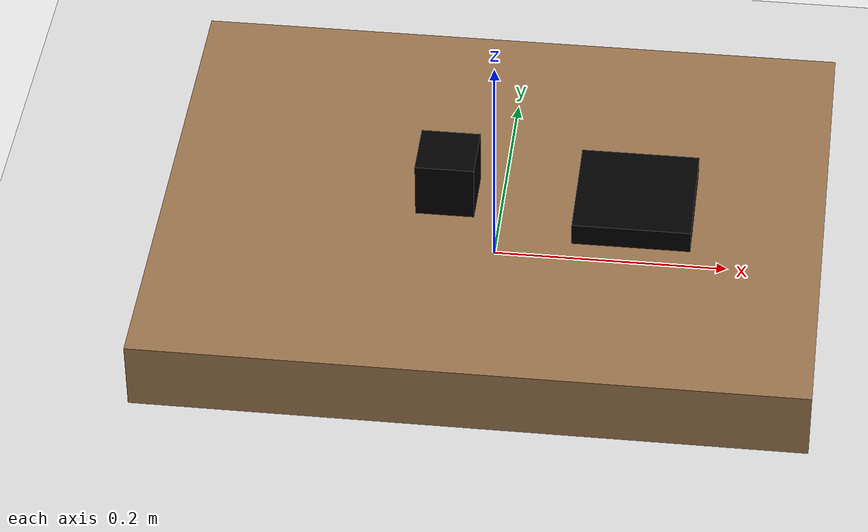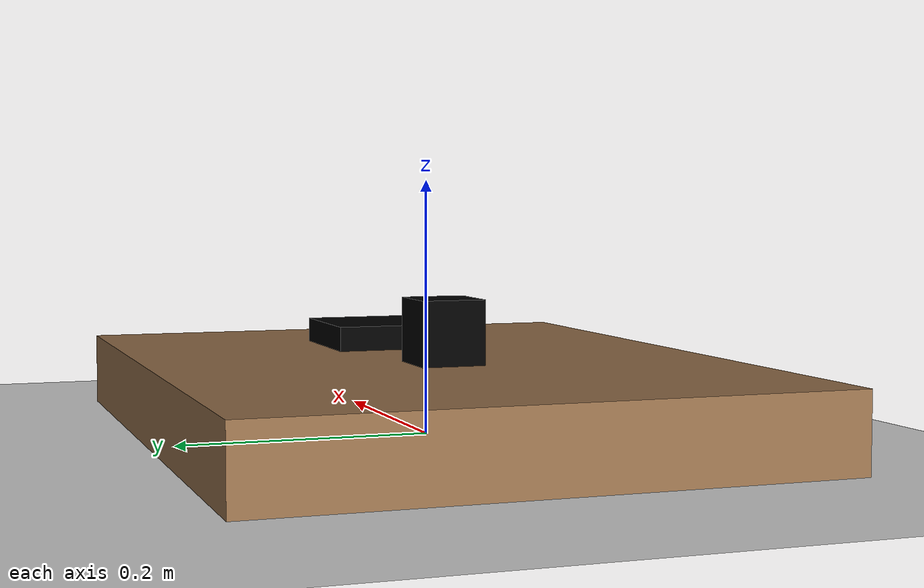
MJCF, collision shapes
<mujoco model="cup_on_coaster">
  <compiler meshdir="../../../meshes"/>

  <visual>
    <map znear="0.001"/>
  </visual>

  <asset>
    <!-- meshdir resolved from this file: assets/xmls/scenes/cup_on_coaster/
         -> ../../../meshes = assets/meshes/ (set in robotiq.xml compiler) -->
    <mesh name="cup_mesh"     file="cup_on_coaster/blue_water_cup/blue_water_cup.obj"/>
    <mesh name="coaster_mesh" file="cup_on_coaster/coaster/coaster.obj"/>

    <material name="cup_mat"     rgba="0.1 0.45 0.85 0.85" specular="0.5" shininess="0.5"/>
    <material name="coaster_mat" rgba="0.65 0.45 0.3 1"    reflectance="0.15"/>
  </asset>

  <worldbody>
    <light name="demo_light" pos="0 0 1.5" dir="0 0 -1"/>
    <geom name="floor" type="plane" size="2 2 0.1" rgba="0.85 0.85 0.85 1"/>

    <!-- table: center z=0.03, half-height=0.03 -> top surface z=0.06 -->
    <body name="table" pos="0 0 0.03">
      <geom name="table_top" type="box" size="0.28 0.22 0.03" rgba="0.6 0.45 0.3 1"/>
    </body>

    <body name="cup" pos="-0.04 0.0 0.085">
      <freejoint name="cup_joint"/>
      <geom name="cup_col" type="box" size="0.025 0.025 0.025"
            mass="0.005" friction="1.2 0.05 0.01"
            rgba="0 0 0 0" contype="1" conaffinity="1"/>
      <geom name="cup_vis" type="mesh" mesh="cup_mesh" material="cup_mat"
            quat="0.5 -0.866 0 0" density="0"
            contype="0" conaffinity="0" group="1"/>
      <site name="cup_site" pos="0 0 0" size="0.004" rgba="1 0 0 0"/>
    </body>

    <!-- coaster: static (no joint), half-height=0.01
         center z = 0.06 (table top) + 0.01 = 0.07                           -->
    <body name="coaster" pos="0.12 0.0 0.07">
      <geom name="coaster_col" type="box" size="0.05 0.05 0.01"
            mass="0.05" rgba="0 0 0 0" contype="1" conaffinity="1"/>
      <geom name="coaster_vis" type="mesh" mesh="coaster_mesh" material="coaster_mat"
            quat="0.942405 0.30447 -0.0342528 -0.134153" density="0"
            contype="0" conaffinity="0" group="1"/>
      <site name="coaster_site" pos="0 0 0" size="0.004" rgba="0 1 0 0"/>
    </body>

    <!-- Front camera: looking from -Y toward the task area -->
    <camera name="env1_cam" pos="0 -0.8 0.5" xyaxes="1 0 0 0 0.447 0.894" fovy="45"/>
    <!-- Side camera: looking from +X toward the task area -->
    <camera name="env0_cam" pos="0.9 0 0.5" xyaxes="0 1 0 -0.406 0 0.914" fovy="45"/>
  </worldbody>

</mujoco>
